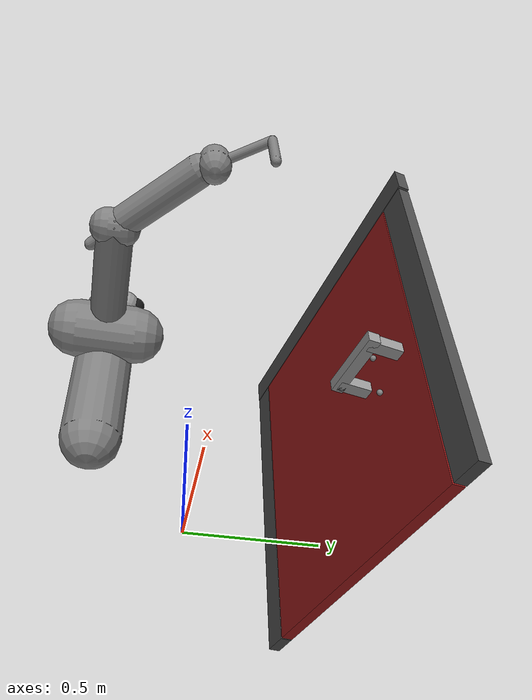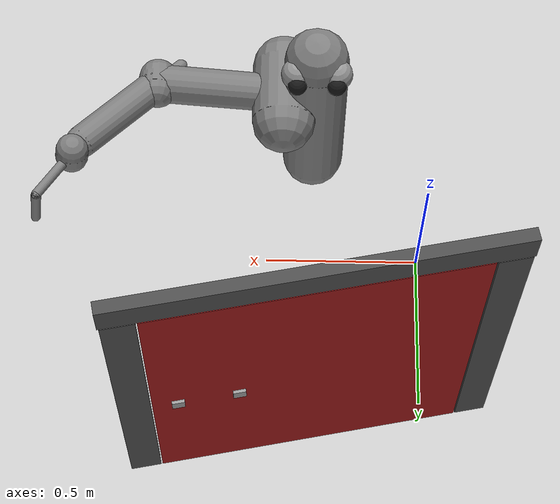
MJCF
<mujoco model="door">

    <compiler inertiafromgeom="true" angle="radian" coordinate="local" />
    <option timestep="0.01" gravity="0 0 0" iterations="20" integrator="RK4" />
    <default>
        <joint armature="0.04" damping="1" limited="true" />
        <geom friction=".5 .1 .1" margin="0.002" condim="1" contype="0" conaffinity="0" />
    </default>

    <asset>
        <texture type="skybox" builtin="gradient" width="100" height="100" rgb1=".4 .6 .8" rgb2="0 0 0"/>
        <texture name="texgeom" type="cube" builtin="flat" mark="cross" width="127" height="1278" rgb1="0.8 0.6 0.4" rgb2="0.8 0.6 0.4" markrgb="1 1 1" random="0.01"/>
        <texture name="texplane" type="2d" builtin="checker" rgb1=".2 .3 .4" rgb2=".1 0.15 0.2" width="100" height="100"/>

        <material name='MatPlane' reflectance='0.5' texture="texplane" texrepeat="1 1" texuniform="true"/>
        <material name='geom' texture="texgeom" texuniform="true"/>
    </asset>

    <worldbody>
        <light directional='false' diffuse='.8 .8 .8' specular='0.3 0.3 0.3' pos='0 0 4.0' dir='0 0 -1'/>

        <body name="r_shoulder_pan_link" pos="0.35 -0.35 0.5">
            <geom name="e1" type="sphere" rgba="0.6 0.6 0.6 1" pos="-0.06 0.05 0.2" size="0.05" />
            <geom name="e2" type="sphere" rgba="0.6 0.6 0.6 1" pos=" 0.06 0.05 0.2" size="0.05" />
            <geom name="e1p" type="sphere" rgba="0.1 0.1 0.1 1" pos="-0.06 0.09 0.2" size="0.03" />
            <geom name="e2p" type="sphere" rgba="0.1 0.1 0.1 1" pos=" 0.06 0.09 0.2" size="0.03" />
            <geom name="sp" type="capsule" fromto="0 0 -0.4 0 0 0.2" size="0.1" />
            <joint name="r_shoulder_pan_joint" type="hinge" pos="0 0 0" axis="0 0 1" range="-2.2854 1.714602" damping="1.0" />

            <body name="r_shoulder_lift_link" pos="0.1 0 0" euler="0.0 -0.13 0.0">
                <geom name="sl" type="capsule" fromto="0 -0.1 0 0 0.1 0" size="0.1" />
                <joint name="r_shoulder_lift_joint" type="hinge" pos="0 0 0" axis="0 1 0" range="-0.5236 1.3963" damping="10.0" />

                <body name="r_upper_arm_roll_link" pos="0 0 0">
                    <geom name="uar" type="capsule" fromto="-0.1 0 0 0.1 0 0" size="0.02" />
                    <joint name="r_upper_arm_roll_joint" type="hinge" pos="0 0 0" axis="1 0 0" range="-3.9 0.8" damping="0.1" />

                    <body name="r_upper_arm_link" pos="0 0 0">
                        <geom name="ua" type="capsule" fromto="0 0 0 0.4 0 0" size="0.06" />

                        <body name="r_elbow_flex_link" pos="0.4 0 0" >
                            <geom name="ef" type="capsule" fromto="0 -0.02 0 0.0 0.02 0" size="0.06" />
                            <joint name="r_elbow_flex_joint" type="hinge" pos="0 0 0" axis="0 1 0" range="-2.3213 0" damping="1.0" />

                            <body name="r_forearm_roll_link" pos="0 0 0" euler="0.0 0.0 0.8">
                                <geom name="fr" type="capsule" fromto="-0.1 0 0 0.1 0 0" size="0.02" contype="1" conaffinity="1" />

                                <body name="r_forearm_link" pos="0 0 0">
                                    <geom name="fa" type="capsule" fromto="0 0 0 0.321 0 0" size="0.05" contype="1" conaffinity="1" />

                                    <body name="r_wrist_flex_link" pos="0.321 0 0">
                                        <geom name="wf" type="capsule" fromto="0 -0.02 0 0 0.02 0" size="0.01" contype="1" conaffinity="1" />
                                        <joint name="r_wrist_flex_joint" type="hinge" pos="0 0 0" axis="0 1 0" range="-2.094 0" damping=".1" />

                                        <body name="r_wrist_roll_link" pos="0 0 0" euler="0.0 0.0 0.2">
                                            <geom name="wr" type="capsule" fromto="-0.02 0 0 0.02 0 0" size="0.01" contype="1" conaffinity="1" />
                                            <joint name="r_wrist_roll_joint" type="hinge" pos="0 0 0" axis="1 0 0" range="-0.04 0.04" damping="10.0" />

                                            <body name="r_gripper_palm_link" pos="0 0 0">
                                                <geom name="pl" type="capsule" fromto="0.05 0 -0.02 0.05 0 0.02" size="0.05" contype="1" conaffinity="1" />

                                                <body name="r_gripper_l_finger_link" pos="0.08 0.0 0">
                                                    <geom name="gf" type="capsule" fromto="0 0 0 0.15 0 0" size="0.015" contype="1" conaffinity="1" />

                                                    <body name="r_gripper_l_finger_tip_link" pos="0.15 0.0 0.0">
                                                        <geom name="gft" type="capsule" fromto="0 0 0 0 0.0 -0.15" size="0.015" contype="1" conaffinity="1" />
                                                        <site name="link_top" pos="0.0 0.0 0.0" size="0.01" />
                                                        <site name="link_bottom" pos="0.0 0.0 -0.15" size="0.01" />
                                                    </body>
                                                </body>
                                            </body>
                                        </body>
                                    </body>
                                </body>
                            </body>
                        </body>
                    </body>
                </body>
            </body>
        </body>

        <body name="door_frame" pos="0.35 0.50 0.30" euler="0.0 0.0 0.2">
            <geom name="frame_left" rgba="0.3 0.3 0.3 1" type="box" size="0.05 0.02 0.60" pos="-0.555 0.0 0.00" contype="0" conaffinity="0" />
            <geom name="frame_right" rgba="0.3 0.3 0.3 1" type="box" size="0.05 0.02 0.60" pos="0.555 0.0 0.00" contype="0" conaffinity="0" />
            <geom name="frame_top" rgba="0.3 0.3 0.3 1" type="box" size="0.61 0.02 0.05" pos="0.0 0.0 0.655" contype="0" conaffinity="0" />
        </body>

        <body name="door" pos="0.35 0.50 0.30" euler="0.0 0.0 0.2">
            <geom name="door" rgba="0.6 0.1 0.1 1" type="box" size="0.5 0.02 0.6" contype="1" conaffinity="1" />
            <joint name="door_hinge" type="hinge" pos="-0.5 0.0 0.0" axis="0 0 1" range="-2.0 0.0" damping="5.0" />

            <body name="door_handle" pos="0.15 -0.05 -0.25">
                <geom name="handle_left" type="box" rgba="0.6 0.6 0.6 1" pos="0.08 0 0.2" size="0.02 0.08 0.02" contype="1" conaffinity="1" />
                <geom name="handle_right" type="box" rgba="0.6 0.6 0.6 1" pos="0.27 0 0.2" size="0.02 0.08 0.02" contype="1" conaffinity="1" />
                <geom name="handle_center" type="box" rgba="0.6 0.6 0.6 1" pos="0.175 -0.075 0.2" size="0.12 0.02 0.02" contype="1" conaffinity="1" />
                <site name="above_handle" pos="0.175 0 0.25" size="0.01" />
                <site name="handle" pos="0.175 0 0.10" size="0.01" />
            </body>
        </body>
    </worldbody>

    <actuator>
        <motor joint="r_shoulder_pan_joint" ctrlrange="-100.0 100.0" ctrllimited="true" />
        <motor joint="r_shoulder_lift_joint" ctrlrange="-100.0 100.0" ctrllimited="true" />
        <motor joint="r_upper_arm_roll_joint" ctrlrange="-100.0 100.0" ctrllimited="true" />
        <motor joint="r_elbow_flex_joint" ctrlrange="-100.0 100.0" ctrllimited="true" />
        <motor joint="r_wrist_flex_joint" ctrlrange="-100.0 100.0" ctrllimited="true" />
        <motor joint="r_wrist_roll_joint" ctrlrange="-100.0 100.0" ctrllimited="true" />
    </actuator>

</mujoco>
